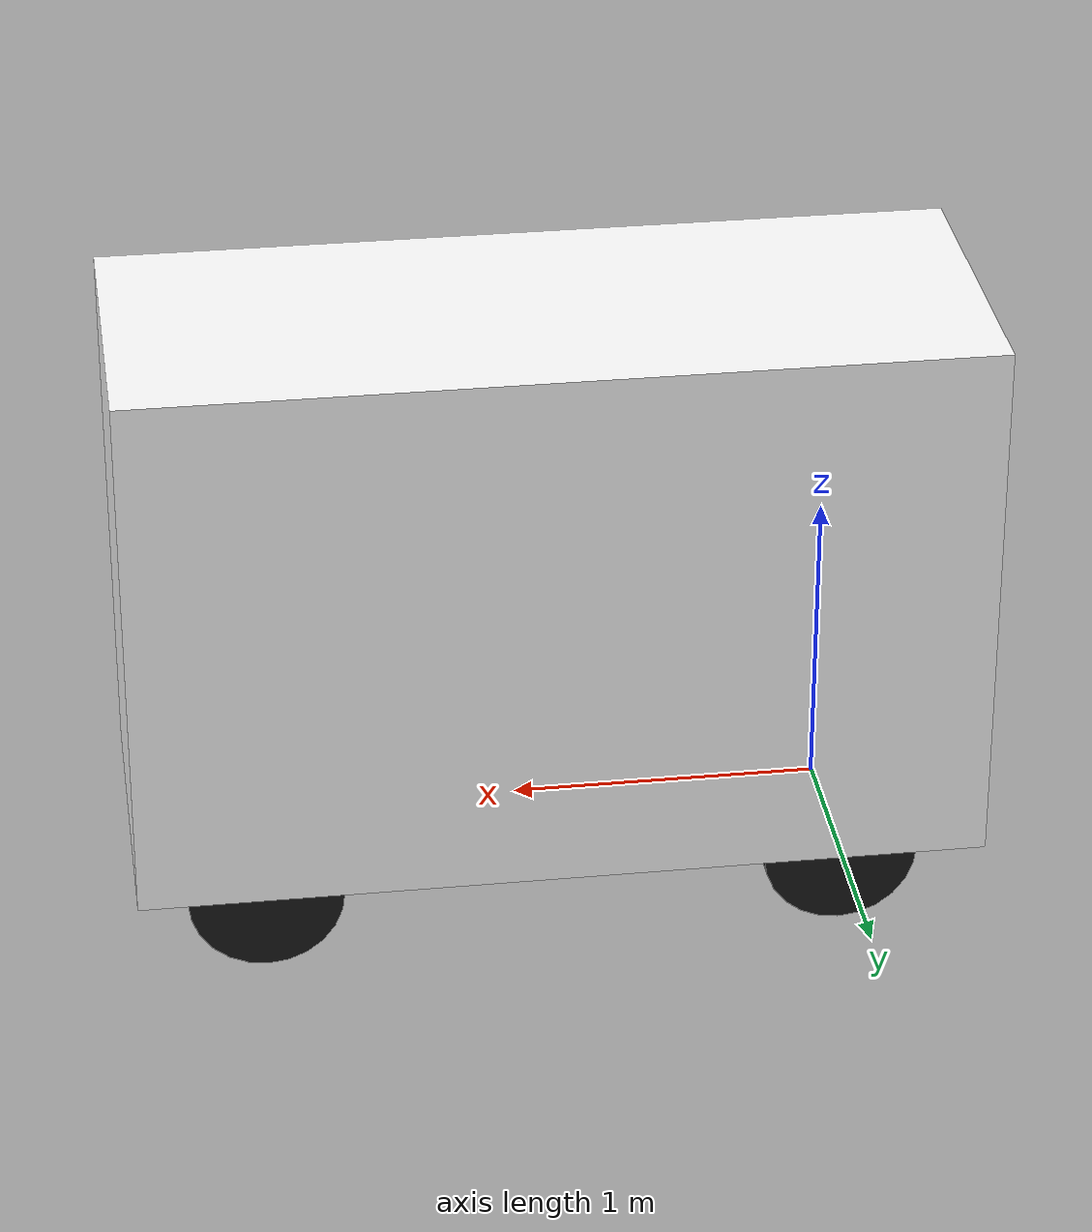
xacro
<?xml version="1.0"?>

<robot xmlns:xacro="https://wiki.ros.org/xacro" name="robot">

<xacro:property name="pi" value="3.14159265359" />

    <xacro:macro name="inertial_box" params="mass x y z *origin">
        <inertial>
            <xacro:insert_block name="origin"/>
            <mass value="${mass}" />
            <inertia ixx="${(1/12) * mass * (y*y + z*z)}" ixy="0.0" ixz="0.0"
                    iyy="${(1/12) * mass * (x*x + z*z)}" iyz="0.0"
                    izz="${(1/12) * mass * (x*x + y*y)}" />
        </inertial>
    </xacro:macro>

    <xacro:macro name="inertial_cylinder" params="mass length radius *origin">
        <inertial>
            <xacro:insert_block name="origin"/>
            <mass value="${mass}" />
            <inertia ixx="${(1/12) * mass * (3*radius*radius + length*length)}" ixy="0.0" ixz="0.0"
                    iyy="${(1/12) * mass * (3*radius*radius + length*length)}" iyz="0.0"
                    izz="${(1/2) * mass * (radius*radius)}" />
        </inertial>
    </xacro:macro>

    <!-- Materials -->
    <material name="white">
        <color rgba="1 1 1 1"/>
    </material>

    <material name="black">
        <color rgba="0.1 0.1 0.1 1"/>
    </material>

    <!-- Base Link -->
    <link name="base"></link>

    <!-- Chassis -->
    <joint name="chassis_joint" type="fixed">
        <parent link="base"/>
        <child link="chassis"/>
        <origin xyz="0.9 0 0.89"/>
    </joint>

    <link name="chassis">
        <visual>
            <origin xyz="0 0 0" rpy="0 0 0"/>
            <geometry>
                <box size="2.74 1.06 1.785"/>
            </geometry>
            <material name="white"/>
        </visual>
        <collision>
            <origin xyz="0 0 0" rpy="0 0 0"/>
            <geometry>
                <box size="2.74 1.06 1.785"/>
            </geometry>
        </collision>
        <xacro:inertial_box mass="700" x="2.74" y="1.06" z="1.785">
            <origin xyz="0 0 0" rpy="0 0 0"/>
        </xacro:inertial_box>
    </link>

    <!-- Front Left Wheel -->
    <joint name="front_left_wheel_joint" type="continuous">
        <parent link="base"/>
        <child link="front_left_wheel"/>
        <origin xyz="1.86 0.443 0" rpy="-${pi/2} 0 0"/>
        <axis xyz="0 0 1"/>
    </joint>

    <link name="front_left_wheel">
        <visual>
            <origin xyz="0 0 0" rpy="0 0 0"/>
            <geometry>
                <cylinder radius="0.25" length="0.15"/>
            </geometry>
            <material name="black"/>
        </visual>
        <collision>
            <origin xyz="0 0 0" rpy="0 0 0"/>
            <geometry>
                <cylinder radius="0.25" length="0.15"/>
            </geometry>
        </collision>
        <xacro:inertial_cylinder mass="15" length="0.15" radius="0.25">
            <origin xyz="0 0 0" rpy="0 0 0"/>
        </xacro:inertial_cylinder>
    </link>

    <!-- Front Right Wheel -->
    <joint name="front_right_wheel_joint" type="continuous">
        <parent link="base"/>
        <child link="front_right_wheel"/>
        <origin xyz="1.86 -0.443 0" rpy="${pi/2} 0 0"/>
        <axis xyz="0 0 -1"/>
    </joint>

    <link name="front_right_wheel">
        <visual>
            <origin xyz="0 0 0" rpy="0 0 0"/>
            <geometry>
                <cylinder radius="0.25" length="0.15"/>
            </geometry>
            <material name="black"/>
        </visual>
        <collision>
            <origin xyz="0 0 0" rpy="0 0 0"/>
            <geometry>
                <cylinder radius="0.25" length="0.15"/>
            </geometry>
        </collision>
        <xacro:inertial_cylinder mass="15" length="0.15" radius="0.25">
            <origin xyz="0 0 0" rpy="0 0 0"/>
        </xacro:inertial_cylinder>
    </link>

    <!-- Rear Left Wheel -->
    <joint name="rear_left_wheel_joint" type="continuous">
        <parent link="base"/>
        <child link="rear_left_wheel"/>
        <origin xyz="0 0.425 0" rpy="-${pi/2} 0 0"/>
        <axis xyz="0 0 1"/>
    </joint>

    <link name="rear_left_wheel">
        <visual>
            <origin xyz="0 0 0" rpy="0 0 0"/>
            <geometry>
                <cylinder radius="0.25" length="0.15"/>
            </geometry>
            <material name="black"/>
        </visual>
        <collision>
            <origin xyz="0 0 0" rpy="0 0 0"/>
            <geometry>
                <cylinder radius="0.25" length="0.15"/>
            </geometry>
        </collision>
        <xacro:inertial_cylinder mass="15" length="0.15" radius="0.25">
            <origin xyz="0 0 0" rpy="0 0 0"/>
        </xacro:inertial_cylinder>
    </link>

    <!-- Rear Right Wheel -->
    <joint name="rear_right_wheel_joint" type="continuous">
        <parent link="base"/>
        <child link="rear_right_wheel"/>
        <origin xyz="0 -0.425 0" rpy="${pi/2} 0 0"/>
        <axis xyz="0 0 -1"/>
    </joint>

    <link name="rear_right_wheel">
        <visual>
            <origin xyz="0 0 0" rpy="0 0 0"/>
            <geometry>
                <cylinder radius="0.25" length="0.15"/>
            </geometry>
            <material name="black"/>
        </visual>
        <collision>
            <origin xyz="0 0 0" rpy="0 0 0"/>
            <geometry>
                <cylinder radius="0.25" length="0.15"/>
            </geometry>
        </collision>
        <xacro:inertial_cylinder mass="15" length="0.15" radius="0.25">
            <origin xyz="0 0 0" rpy="0 0 0"/>
        </xacro:inertial_cylinder>
    </link>

</robot>
